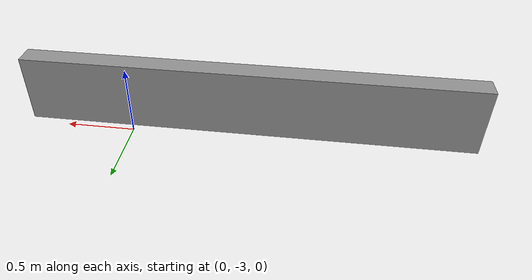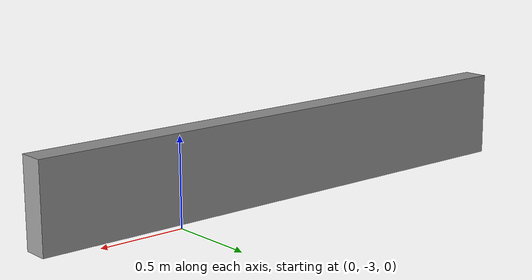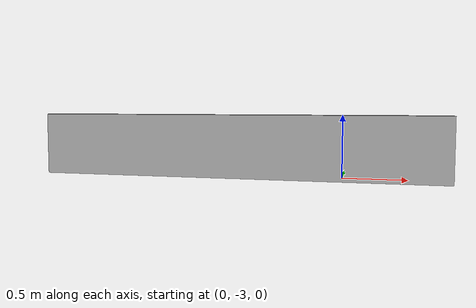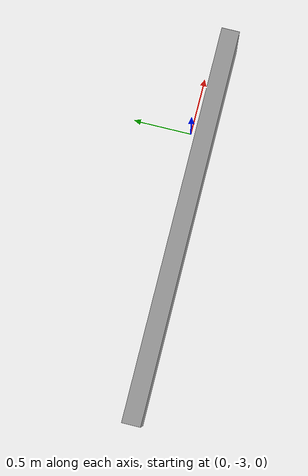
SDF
<?xml version='1.0'?>
<sdf version='1.7'>
  <model name='add_wall6'>
    <pose>-0.83 -1.6025 0 0 -0 0</pose>
    <link name='Wall_3'>
      <collision name='Wall_3_Collision'>
        <geometry>
          <box>
            <size>3.25 0.15 0.5</size>
          </box>
        </geometry>
        <pose>0 0 0.25 0 -0 0</pose>
      </collision>
      <visual name='Wall_3_Visual'>
        <pose>0 0 0.25 0 -0 0</pose>
        <geometry>
          <box>
            <size>3.25 0.15 0.5</size>
          </box>
        </geometry>
        <material>
          <script>
            <uri>file://media/materials/scripts/gazebo.material</uri>
            <name>Gazebo/Grey</name>
          </script>
          <ambient>1 1 1 1</ambient>
        </material>
        <meta>
          <layer>0</layer>
        </meta>
      </visual>
      <pose>-0 -1.5275 0 0 -0 0</pose>
    </link>
    <static>1</static>
  </model>
</sdf>
